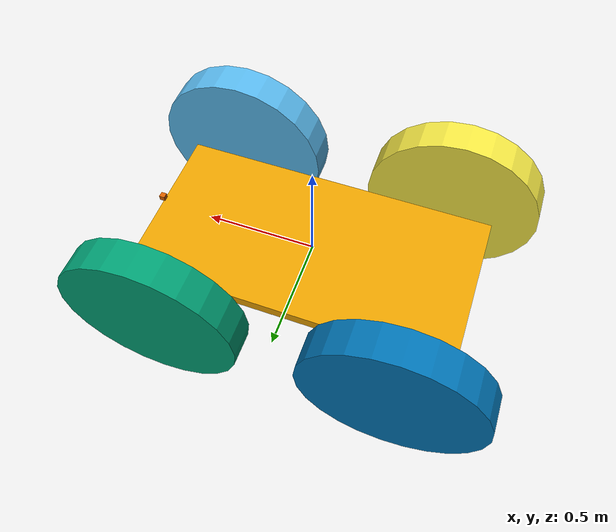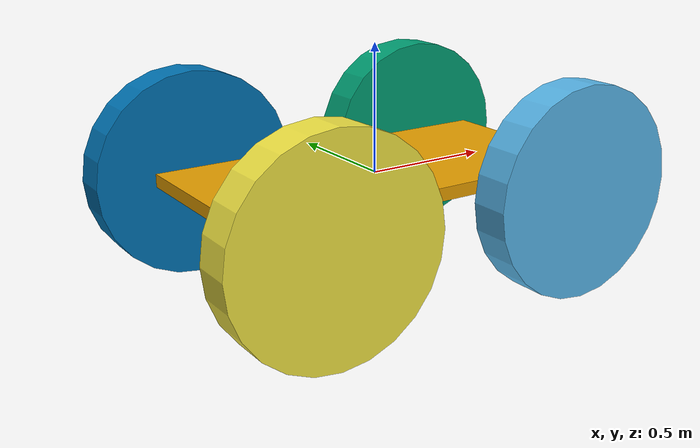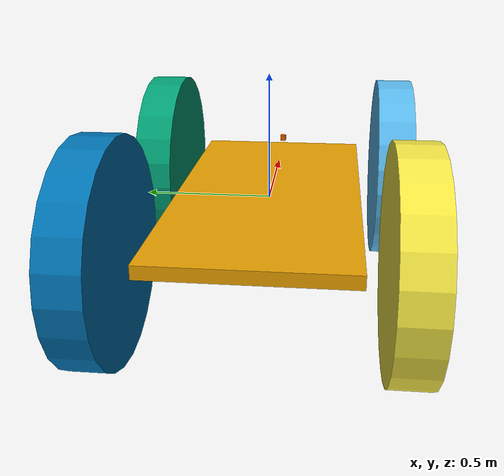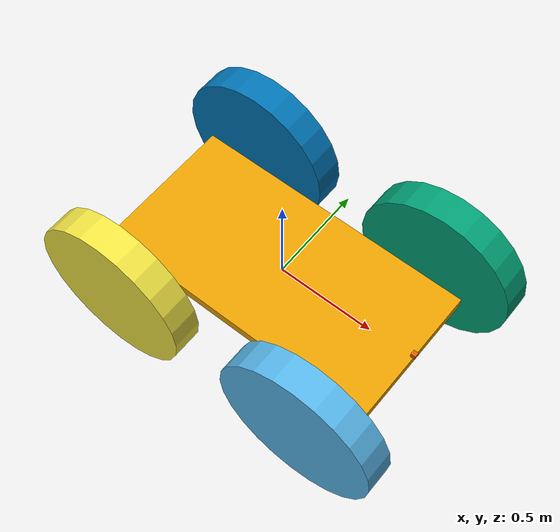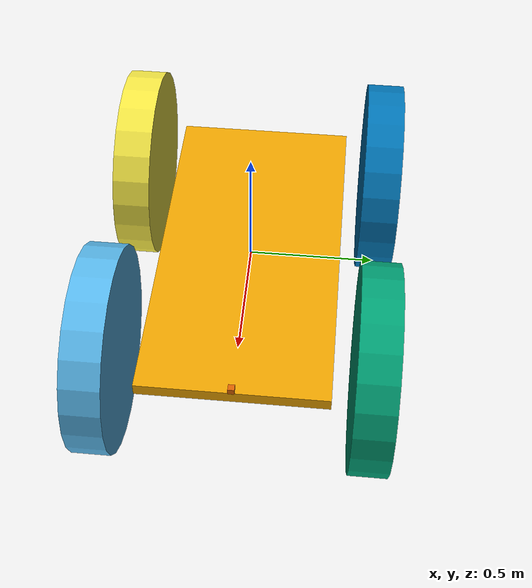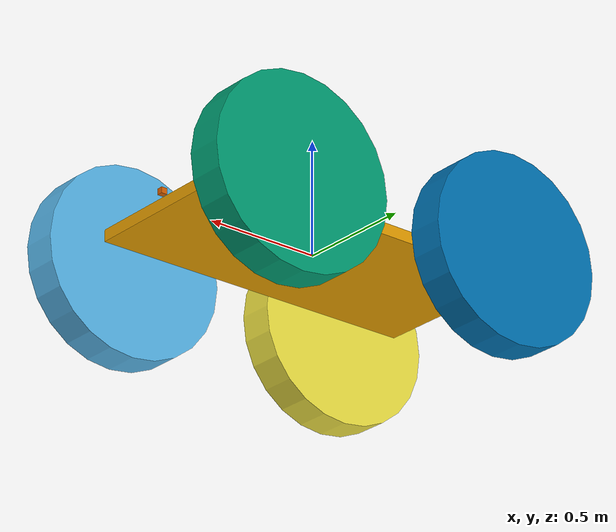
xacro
<?xml version="1.0"?>
<robot name="excavator" xmlns:xacro="http://www.ros.org/wiki/xacro">
  <xacro:property name="itom" value="0.0254" /> <!-- Inches to meters conversion -->

  <xacro:property name="base_width" value="${29*itom}"/>
  <xacro:property name="base_length" value="${58*itom}"/> <!-- Max val: 50" bare minimum -->
  <xacro:property name="base_height" value="${2*itom}"/> <!-- BS'd this number, total random guess -->

  <xacro:property name="wheel_radius" value="${16*itom}"/>
  <xacro:property name="wheel_width" value="${6*itom}"/>

  <xacro:property name="mass" value="5000" />

  <xacro:include filename="$(find exc_description)/urdf/exc.gazebo" />

  <xacro:macro name="wheel" params="name fb lr">
    <link name="${name}">
      <visual>
        <geometry>
          <cylinder radius="${wheel_radius}" length="${wheel_width}" />
        </geometry>
        <origin rpy="${pi/2} 0 0" />
      </visual>
      <collision>
        <geometry>
          <cylinder radius="${wheel_radius}" length="${wheel_width}" />
        </geometry>
        <origin rpy="${pi/2} 0 0" />
      </collision>
      <inertial>
        <origin xyz="0 ${wheel_width/2} 0" rpy="0 0 0"/>
        <mass value="${mass}"/>
        <inertia ixx="${mass / 12.0 * (wheel_radius*wheel_radius*pi*2)}" ixy="0.0" ixz="0.0" iyy="${mass / 12.0 * (wheel_radius*wheel_radius*pi*2)}" iyz="0.0" izz="${mass / 12.0 * (wheel_radius*wheel_radius*pi*2)}"/> <!-- Temporary inertia: change -->
      </inertial>
    </link>
    <joint name="${name}_joint" type="continuous">
      <parent link="base_link"/>
      <child link="${name}"/><!--rpy="0 0 ${pi/2}"-->
      <origin xyz="${fb*base_length/2 - 8*fb*itom} ${lr*base_width/2 + lr*wheel_width} ${-base_height/2}"/>
      <axis xyz="0 1 0"/>
      <limit effort="10000000.0"  velocity="10000"/>
      <dynamics damping="0.7"/>
    </joint>
    <transmission name="${name}_tran">
      <type>transmission_interface/SimpleTransmission</type>
      <joint name="${name}_joint">
        <hardwareInterface>hardware_interface/EffortJointInterface</hardwareInterface>
      </joint>
      <actuator name="${name}_motor">
        <hardwareInterface>hardware_interface/EffortJointInterface</hardwareInterface>
        <mechanicalReduction>1</mechanicalReduction>
      </actuator>
    </transmission>
  </xacro:macro>

  <link name="base_link">
    <visual>
      <geometry>
        <box size="${base_length} ${base_width} ${base_height}" />
      </geometry>
    </visual>
    <collision>
      <geometry>
        <box size="${base_length} ${base_width} ${base_height}" />
      </geometry>
    </collision>
    <inertial>
      <origin xyz="0 0 0" rpy="0 0 0"/>
      <mass value="250"/>
      <inertia ixx="${mass / 12.0 * (base_width*base_width + base_height*base_height)}" ixy="0.0" ixz="0.0" iyy="${mass / 12.0 * (base_height*base_height + base_length*base_length*pi)}" iyz="0.0" izz="${mass / 12.0 * (base_width*base_width + base_length*base_length)}"/>
    </inertial>
  </link>

  <xacro:wheel name="wheel_fr" fb="1" lr="-1" />
  <xacro:wheel name="wheel_fl" fb="1" lr="1" />
  <xacro:wheel name="wheel_rr" fb="-1" lr="-1" />
  <xacro:wheel name="wheel_rl" fb="-1" lr="1" />

  <link name="camera_link">
    <collision>
      <origin xyz="0 0 0"/>
      <geometry>
        <box size="${1*itom} ${1*itom} ${1*itom}"/>
      </geometry>
    </collision>

    <visual>
      <origin xyz="0 0 0"/>
      <geometry>
        <box size="${1*itom} ${1*itom} ${1*itom}"/>
      </geometry>
    </visual>

    <inertial>
      <mass value="1e-5" />
      <origin xyz="0 0 0" rpy="0 0 0"/>
      <inertia ixx="1e-6" ixy="0" ixz="0" iyy="1e-6" iyz="0" izz="1e-6" />
    </inertial>
  </link>

  <joint name="camera_joint" type="fixed">
    <axis xyz="0 1 0" />
    <origin xyz="${base_length/2} 0 ${base_height}" />
    <parent link="base_link" />
    <child link="camera_link" />
  </joint>

  <gazebo>
    <plugin name="gazebo_ros_control" filename="libgazebo_ros_control.so">
      <robotNamespace>/exc</robotNamespace>
    </plugin>
  </gazebo>

</robot>
